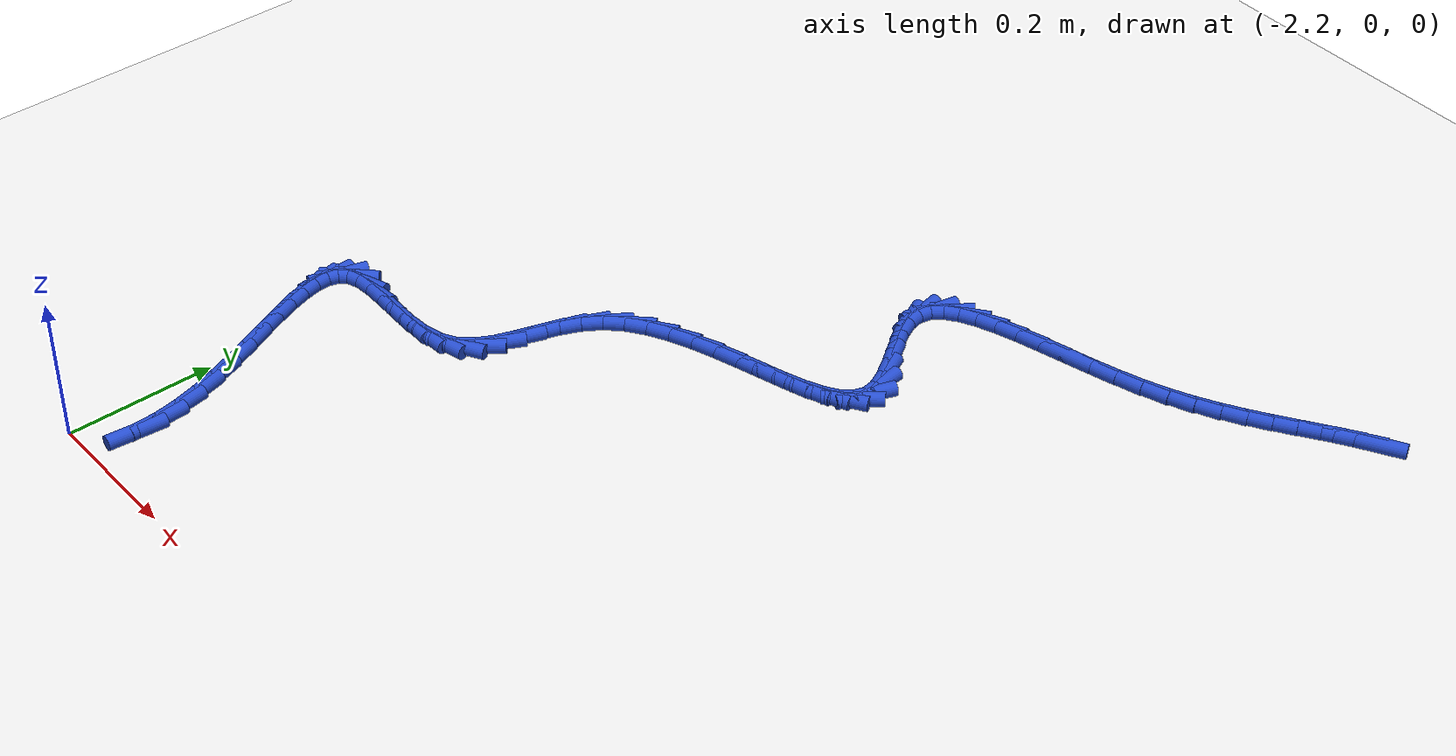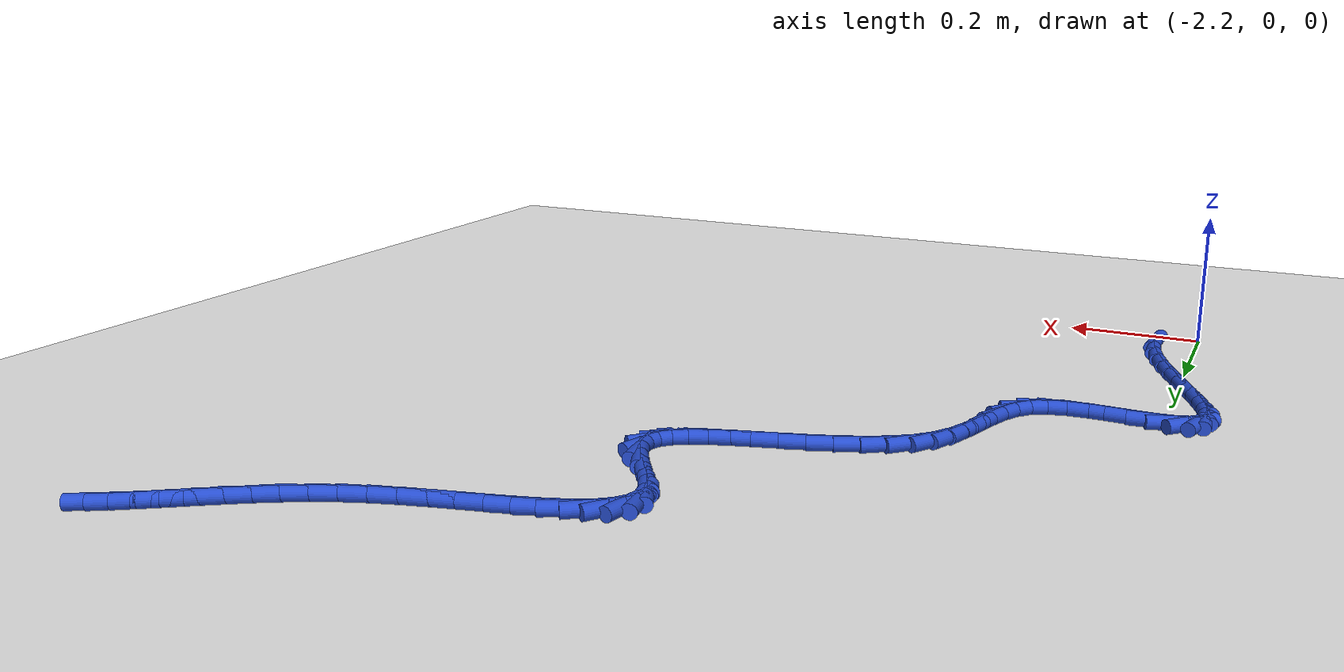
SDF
<sdf version="1.6">
 <world name="default">
  <model name="ground_plane">
   <static>1</static>
   <link name="link">
    <collision name="collision">
     <geometry><plane><normal>0 0 1</normal><size>100 100</size></plane></geometry>
     <surface><friction><ode><mu>100</mu><mu2>50</mu2></ode></friction></surface>
    </collision>
    <visual name="visual">
     <cast_shadows>0</cast_shadows>
     <geometry><plane><normal>0 0 1</normal><size>100 100</size></plane></geometry>
     <material>
      <script><uri>file://media/materials/scripts/gazebo.material</uri><name>Gazebo/WhiteGlow</name></script>
     </material>
    </visual>
   </link>
  </model>
  <model name="line">
   <link name="link_73">
    <pose>-1.1656450631402069 1.2110482546371346 0.01 0 1.57 0.5080261648451341</pose>
    <collision name="collision">
     <geometry><cylinder><radius>0.01</radius><length>0.08</length></cylinder></geometry>
    </collision>
    <visual name="visual">
     <material>
      <script><name>Gazebo/Blue</name><uri>file://media/materials/scripts/gazebo.material</uri></script>
     </material>
     <geometry><cylinder><radius>0.01</radius><length>0.08</length></cylinder></geometry>
    </visual>
   </link>
   <link name="link_74">
    <pose>-1.18724390941848 1.1990226615977815 0.01 0 1.57 0.5500102541060132</pose>
    <collision name="collision">
     <geometry><cylinder><radius>0.01</radius><length>0.08</length></cylinder></geometry>
    </collision>
    <visual name="visual">
     <material>
      <script><name>Gazebo/Blue</name><uri>file://media/materials/scripts/gazebo.material</uri></script>
     </material>
     <geometry><cylinder><radius>0.01</radius><length>0.08</length></cylinder></geometry>
    </visual>
   </link>
   <link name="link_75">
    <pose>-1.2092230648331632 1.1855468167322198 0.01 0 1.57 0.573174121978348</pose>
    <collision name="collision">
     <geometry><cylinder><radius>0.01</radius><length>0.08</length></cylinder></geometry>
    </collision>
    <visual name="visual">
     <material>
      <script><name>Gazebo/Blue</name><uri>file://media/materials/scripts/gazebo.material</uri></script>
     </material>
     <geometry><cylinder><radius>0.01</radius><length>0.08</length></cylinder></geometry>
    </visual>
   </link>
   <link name="link_76">
    <pose>-1.231787068992631 1.1709827476450816 0.01 0 1.57 0.579696136962879</pose>
    <collision name="collision">
     <geometry><cylinder><radius>0.01</radius><length>0.08</length></cylinder></geometry>
    </collision>
    <visual name="visual">
     <material>
      <script><name>Gazebo/Blue</name><uri>file://media/materials/scripts/gazebo.material</uri></script>
     </material>
     <geometry><cylinder><radius>0.01</radius><length>0.08</length></cylinder></geometry>
    </visual>
   </link>
   <link name="link_77">
    <pose>-1.2551404615052564 1.1556924819409986 0.01 0 1.57 0.5714126258259451</pose>
    <collision name="collision">
     <geometry><cylinder><radius>0.01</radius><length>0.08</length></cylinder></geometry>
    </collision>
    <visual name="visual">
     <material>
      <script><name>Gazebo/Blue</name><uri>file://media/materials/scripts/gazebo.material</uri></script>
     </material>
     <geometry><cylinder><radius>0.01</radius><length>0.08</length></cylinder></geometry>
    </visual>
   </link>
   <link name="link_78">
    <pose>-1.2794877819794128 1.1400380472246017 0.01 0 1.57 0.5498383918982339</pose>
    <collision name="collision">
     <geometry><cylinder><radius>0.01</radius><length>0.08</length></cylinder></geometry>
    </collision>
    <visual name="visual">
     <material>
      <script><name>Gazebo/Blue</name><uri>file://media/materials/scripts/gazebo.material</uri></script>
     </material>
     <geometry><cylinder><radius>0.01</radius><length>0.08</length></cylinder></geometry>
    </visual>
   </link>
   <link name="link_79">
    <pose>-1.305033570023474 1.1243814711005238 0.01 0 1.57 0.5162707420640201</pose>
    <collision name="collision">
     <geometry><cylinder><radius>0.01</radius><length>0.08</length></cylinder></geometry>
    </collision>
    <visual name="visual">
     <material>
      <script><name>Gazebo/Blue</name><uri>file://media/materials/scripts/gazebo.material</uri></script>
     </material>
     <geometry><cylinder><radius>0.01</radius><length>0.08</length></cylinder></geometry>
    </visual>
   </link>
   <link name="link_80">
    <pose>-1.3319823652458136 1.1090847811733962 0.01 0 1.57 0.4719223714415321</pose>
    <collision name="collision">
     <geometry><cylinder><radius>0.01</radius><length>0.08</length></cylinder></geometry>
    </collision>
    <visual name="visual">
     <material>
      <script><name>Gazebo/Blue</name><uri>file://media/materials/scripts/gazebo.material</uri></script>
     </material>
     <geometry><cylinder><radius>0.01</radius><length>0.08</length></cylinder></geometry>
    </visual>
   </link>
   <link name="link_81">
    <pose>-1.3605387072548052 1.0945100050478511 0.01 0 1.57 0.41805260726238536</pose>
    <collision name="collision">
     <geometry><cylinder><radius>0.01</radius><length>0.08</length></cylinder></geometry>
    </collision>
    <visual name="visual">
     <material>
      <script><name>Gazebo/Blue</name><uri>file://media/materials/scripts/gazebo.material</uri></script>
     </material>
     <geometry><cylinder><radius>0.01</radius><length>0.08</length></cylinder></geometry>
    </visual>
   </link>
   <link name="link_82">
    <pose>-1.3909071356588232 1.0810191703285197 0.01 0 1.57 0.3564737752553014</pose>
    <collision name="collision">
     <geometry><cylinder><radius>0.01</radius><length>0.08</length></cylinder></geometry>
    </collision>
    <visual name="visual">
     <material>
      <script><name>Gazebo/Blue</name><uri>file://media/materials/scripts/gazebo.material</uri></script>
     </material>
     <geometry><cylinder><radius>0.01</radius><length>0.08</length></cylinder></geometry>
    </visual>
   </link>
   <link name="link_83">
    <pose>-1.4232783986245852 1.0689646832171777 0.01 0 1.57 0.3010799710368386</pose>
    <collision name="collision">
     <geometry><cylinder><radius>0.01</radius><length>0.08</length></cylinder></geometry>
    </collision>
    <visual name="visual">
     <material>
      <script><name>Gazebo/Blue</name><uri>file://media/materials/scripts/gazebo.material</uri></script>
     </material>
     <geometry><cylinder><radius>0.01</radius><length>0.08</length></cylinder></geometry>
    </visual>
   </link>
   <link name="link_84">
    <pose>-1.457379683861187 1.0583755535642374 0.01 0 1.57 0.26475034938743125</pose>
    <collision name="collision">
     <geometry><cylinder><radius>0.01</radius><length>0.08</length></cylinder></geometry>
    </collision>
    <visual name="visual">
     <material>
      <script><name>Gazebo/Blue</name><uri>file://media/materials/scripts/gazebo.material</uri></script>
     </material>
     <geometry><cylinder><radius>0.01</radius><length>0.08</length></cylinder></geometry>
    </visual>
   </link>
   <link name="link_85">
    <pose>-1.4923749146577403 1.0488878378193645 0.01 0 1.57 0.24549358106713562</pose>
    <collision name="collision">
     <geometry><cylinder><radius>0.01</radius><length>0.08</length></cylinder></geometry>
    </collision>
    <visual name="visual">
     <material>
      <script><name>Gazebo/Blue</name><uri>file://media/materials/scripts/gazebo.material</uri></script>
     </material>
     <geometry><cylinder><radius>0.01</radius><length>0.08</length></cylinder></geometry>
    </visual>
   </link>
   <link name="link_86">
    <pose>-1.5273940445326066 1.040113893905447 0.01 0 1.57 0.2423486119743884</pose>
    <collision name="collision">
     <geometry><cylinder><radius>0.01</radius><length>0.08</length></cylinder></geometry>
    </collision>
    <visual name="visual">
     <material>
      <script><name>Gazebo/Blue</name><uri>file://media/materials/scripts/gazebo.material</uri></script>
     </material>
     <geometry><cylinder><radius>0.01</radius><length>0.08</length></cylinder></geometry>
    </visual>
   </link>
   <link name="link_87">
    <pose>-1.5615670270041484 1.031666079745375 0.01 0 1.57 0.25640333268643395</pose>
    <collision name="collision">
     <geometry><cylinder><radius>0.01</radius><length>0.08</length></cylinder></geometry>
    </collision>
    <visual name="visual">
     <material>
      <script><name>Gazebo/Blue</name><uri>file://media/materials/scripts/gazebo.material</uri></script>
     </material>
     <geometry><cylinder><radius>0.01</radius><length>0.08</length></cylinder></geometry>
    </visual>
   </link>
   <link name="link_88">
    <pose>-1.5940238155907258 1.0231567532620376 0.01 0 1.57 0.291374370046075</pose>
    <collision name="collision">
     <geometry><cylinder><radius>0.01</radius><length>0.08</length></cylinder></geometry>
    </collision>
    <visual name="visual">
     <material>
      <script><name>Gazebo/Blue</name><uri>file://media/materials/scripts/gazebo.material</uri></script>
     </material>
     <geometry><cylinder><radius>0.01</radius><length>0.08</length></cylinder></geometry>
    </visual>
   </link>
   <link name="link_89">
    <pose>-1.6238943638107015 1.0141982723783243 0.01 0 1.57 0.35511233384037283</pose>
    <collision name="collision">
     <geometry><cylinder><radius>0.01</radius><length>0.08</length></cylinder></geometry>
    </collision>
    <visual name="visual">
     <material>
      <script><name>Gazebo/Blue</name><uri>file://media/materials/scripts/gazebo.material</uri></script>
     </material>
     <geometry><cylinder><radius>0.01</radius><length>0.08</length></cylinder></geometry>
    </visual>
   </link>
   <link name="link_90">
    <pose>-1.6503086251824357 1.0044029950171236 0.01 0 1.57 0.4627689842121854</pose>
    <collision name="collision">
     <geometry><cylinder><radius>0.01</radius><length>0.08</length></cylinder></geometry>
    </collision>
    <visual name="visual">
     <material>
      <script><name>Gazebo/Blue</name><uri>file://media/materials/scripts/gazebo.material</uri></script>
     </material>
     <geometry><cylinder><radius>0.01</radius><length>0.08</length></cylinder></geometry>
    </visual>
   </link>
   <link name="link_91">
    <pose>-1.6723965532242921 0.9933832791013255 0.01 0 1.57 0.6421028896379123</pose>
    <collision name="collision">
     <geometry><cylinder><radius>0.01</radius><length>0.08</length></cylinder></geometry>
    </collision>
    <visual name="visual">
     <material>
      <script><name>Gazebo/Blue</name><uri>file://media/materials/scripts/gazebo.material</uri></script>
     </material>
     <geometry><cylinder><radius>0.01</radius><length>0.08</length></cylinder></geometry>
    </visual>
   </link>
   <link name="link_92">
    <pose>-1.689288101454631 0.9807514825538192 0.01 0 1.57 0.9338232637430942</pose>
    <collision name="collision">
     <geometry><cylinder><radius>0.01</radius><length>0.08</length></cylinder></geometry>
    </collision>
    <visual name="visual">
     <material>
      <script><name>Gazebo/Blue</name><uri>file://media/materials/scripts/gazebo.material</uri></script>
     </material>
     <geometry><cylinder><radius>0.01</radius><length>0.08</length></cylinder></geometry>
    </visual>
   </link>
   <link name="link_93">
    <pose>-1.7001132233918141 0.9661199632974937 0.01 0 1.57 1.3461623025383136</pose>
    <collision name="collision">
     <geometry><cylinder><radius>0.01</radius><length>0.08</length></cylinder></geometry>
    </collision>
    <visual name="visual">
     <material>
      <script><name>Gazebo/Blue</name><uri>file://media/materials/scripts/gazebo.material</uri></script>
     </material>
     <geometry><cylinder><radius>0.01</radius><length>0.08</length></cylinder></geometry>
    </visual>
   </link>
   <link name="link_94">
    <pose>-1.7040018725542028 0.9491010792552385 0.01 0 1.57 -1.3758552419342212</pose>
    <collision name="collision">
     <geometry><cylinder><radius>0.01</radius><length>0.08</length></cylinder></geometry>
    </collision>
    <visual name="visual">
     <material>
      <script><name>Gazebo/Blue</name><uri>file://media/materials/scripts/gazebo.material</uri></script>
     </material>
     <geometry><cylinder><radius>0.01</radius><length>0.08</length></cylinder></geometry>
    </visual>
   </link>
   <link name="link_95">
    <pose>-1.7000943898345662 0.9293112055816145 0.01 0 1.57 -1.1048046014543444</pose>
    <collision name="collision">
     <geometry><cylinder><radius>0.01</radius><length>0.08</length></cylinder></geometry>
    </collision>
    <visual name="visual">
     <material>
      <script><name>Gazebo/Blue</name><uri>file://media/materials/scripts/gazebo.material</uri></script>
     </material>
     <geometry><cylinder><radius>0.01</radius><length>0.08</length></cylinder></geometry>
    </visual>
   </link>
   <link name="link_96">
    <pose>-1.6888020370887837 0.90685823566723 0.01 0 1.57 -0.9898417401137195</pose>
    <collision name="collision">
     <geometry><cylinder><radius>0.01</radius><length>0.08</length></cylinder></geometry>
    </collision>
    <visual name="visual">
     <material>
      <script><name>Gazebo/Blue</name><uri>file://media/materials/scripts/gazebo.material</uri></script>
     </material>
     <geometry><cylinder><radius>0.01</radius><length>0.08</length></cylinder></geometry>
    </visual>
   </link>
   <link name="link_97">
    <pose>-1.6730119861461905 0.8828076007339862 0.01 0 1.57 -0.9604999957301049</pose>
    <collision name="collision">
     <geometry><cylinder><radius>0.01</radius><length>0.08</length></cylinder></geometry>
    </collision>
    <visual name="visual">
     <material>
      <script><name>Gazebo/Blue</name><uri>file://media/materials/scripts/gazebo.material</uri></script>
     </material>
     <geometry><cylinder><radius>0.01</radius><length>0.08</length></cylinder></geometry>
    </visual>
   </link>
   <link name="link_98">
    <pose>-1.6558969375744803 0.8583351578964183 0.01 0 1.57 -0.9988681809911665</pose>
    <collision name="collision">
     <geometry><cylinder><radius>0.01</radius><length>0.08</length></cylinder></geometry>
    </collision>
    <visual name="visual">
     <material>
      <script><name>Gazebo/Blue</name><uri>file://media/materials/scripts/gazebo.material</uri></script>
     </material>
     <geometry><cylinder><radius>0.01</radius><length>0.08</length></cylinder></geometry>
    </visual>
   </link>
   <link name="link_99">
    <pose>-1.6406295919413467 0.8346167642690615 0.01 0 1.57 -1.1311966422184314</pose>
    <collision name="collision">
     <geometry><cylinder><radius>0.01</radius><length>0.08</length></cylinder></geometry>
    </collision>
    <visual name="visual">
     <material>
      <script><name>Gazebo/Blue</name><uri>file://media/materials/scripts/gazebo.material</uri></script>
     </material>
     <geometry><cylinder><radius>0.01</radius><length>0.08</length></cylinder></geometry>
    </visual>
   </link>
   <link name="link_100">
    <pose>-1.6303826498144827 0.8128282769664501 0.01 0 1.57 -1.4446669297312884</pose>
    <collision name="collision">
     <geometry><cylinder><radius>0.01</radius><length>0.08</length></cylinder></geometry>
    </collision>
    <visual name="visual">
     <material>
      <script><name>Gazebo/Blue</name><uri>file://media/materials/scripts/gazebo.material</uri></script>
     </material>
     <geometry><cylinder><radius>0.01</radius><length>0.08</length></cylinder></geometry>
    </visual>
   </link>
   <link name="link_101">
    <pose>-1.6279967402777866 0.7940123310163362 0.01 0 1.57 1.2265594448515276</pose>
    <collision name="collision">
     <geometry><cylinder><radius>0.01</radius><length>0.08</length></cylinder></geometry>
    </collision>
    <visual name="visual">
     <material>
      <script><name>Gazebo/Blue</name><uri>file://media/materials/scripts/gazebo.material</uri></script>
     </material>
     <geometry><cylinder><radius>0.01</radius><length>0.08</length></cylinder></geometry>
    </visual>
   </link>
   <link name="link_102">
    <pose>-1.633681407522097 0.7781560097443107 0.01 0 1.57 0.8121636027915851</pose>
    <collision name="collision">
     <geometry><cylinder><radius>0.01</radius><length>0.08</length></cylinder></geometry>
    </collision>
    <visual name="visual">
     <material>
      <script><name>Gazebo/Blue</name><uri>file://media/materials/scripts/gazebo.material</uri></script>
     </material>
     <geometry><cylinder><radius>0.01</radius><length>0.08</length></cylinder></geometry>
    </visual>
   </link>
   <link name="link_103">
    <pose>-1.646393986123758 0.7647440288049235 0.01 0 1.57 0.5510473344008664</pose>
    <collision name="collision">
     <geometry><cylinder><radius>0.01</radius><length>0.08</length></cylinder></geometry>
    </collision>
    <visual name="visual">
     <material>
      <script><name>Gazebo/Blue</name><uri>file://media/materials/scripts/gazebo.material</uri></script>
     </material>
     <geometry><cylinder><radius>0.01</radius><length>0.08</length></cylinder></geometry>
    </visual>
   </link>
   <link name="link_104">
    <pose>-1.6650841608977314 0.7532580348834667 0.01 0 1.57 0.4033380444575405</pose>
    <collision name="collision">
     <geometry><cylinder><radius>0.01</radius><length>0.08</length></cylinder></geometry>
    </collision>
    <visual name="visual">
     <material>
      <script><name>Gazebo/Blue</name><uri>file://media/materials/scripts/gazebo.material</uri></script>
     </material>
     <geometry><cylinder><radius>0.01</radius><length>0.08</length></cylinder></geometry>
    </visual>
   </link>
   <link name="link_105">
    <pose>-1.6887016166589788 0.7431796746652339 0.01 0 1.57 0.3225448823996012</pose>
    <collision name="collision">
     <geometry><cylinder><radius>0.01</radius><length>0.08</length></cylinder></geometry>
    </collision>
    <visual name="visual">
     <material>
      <script><name>Gazebo/Blue</name><uri>file://media/materials/scripts/gazebo.material</uri></script>
     </material>
     <geometry><cylinder><radius>0.01</radius><length>0.08</length></cylinder></geometry>
    </visual>
   </link>
   <link name="link_106">
    <pose>-1.716196038222463 0.7339905948355178 0.01 0 1.57 0.2830190730060466</pose>
    <collision name="collision">
     <geometry><cylinder><radius>0.01</radius><length>0.08</length></cylinder></geometry>
    </collision>
    <visual name="visual">
     <material>
      <script><name>Gazebo/Blue</name><uri>file://media/materials/scripts/gazebo.material</uri></script>
     </material>
     <geometry><cylinder><radius>0.01</radius><length>0.08</length></cylinder></geometry>
    </visual>
   </link>
   <link name="link_107">
    <pose>-1.746517110403146 0.7251724420796117 0.01 0 1.57 0.272381816924485</pose>
    <collision name="collision">
     <geometry><cylinder><radius>0.01</radius><length>0.08</length></cylinder></geometry>
    </collision>
    <visual name="visual">
     <material>
      <script><name>Gazebo/Blue</name><uri>file://media/materials/scripts/gazebo.material</uri></script>
     </material>
     <geometry><cylinder><radius>0.01</radius><length>0.08</length></cylinder></geometry>
    </visual>
   </link>
   <link name="link_108">
    <pose>-1.7786145180159898 0.7162068630828079 0.01 0 1.57 0.285417868100931</pose>
    <collision name="collision">
     <geometry><cylinder><radius>0.01</radius><length>0.08</length></cylinder></geometry>
    </collision>
    <visual name="visual">
     <material>
      <script><name>Gazebo/Blue</name><uri>file://media/materials/scripts/gazebo.material</uri></script>
     </material>
     <geometry><cylinder><radius>0.01</radius><length>0.08</length></cylinder></geometry>
    </visual>
   </link>
   <link name="link_109">
    <pose>-1.8114379458759562 0.7065755045303993 0.01 0 1.57 0.3212643828093811</pose>
    <collision name="collision">
     <geometry><cylinder><radius>0.01</radius><length>0.08</length></cylinder></geometry>
    </collision>
    <visual name="visual">
     <material>
      <script><name>Gazebo/Blue</name><uri>file://media/materials/scripts/gazebo.material</uri></script>
     </material>
     <geometry><cylinder><radius>0.01</radius><length>0.08</length></cylinder></geometry>
    </visual>
   </link>
   <link name="link_110">
    <pose>-1.8439370787980076 0.6957600131076798 0.01 0 1.57 0.38239304120794576</pose>
    <collision name="collision">
     <geometry><cylinder><radius>0.01</radius><length>0.08</length></cylinder></geometry>
    </collision>
    <visual name="visual">
     <material>
      <script><name>Gazebo/Blue</name><uri>file://media/materials/scripts/gazebo.material</uri></script>
     </material>
     <geometry><cylinder><radius>0.01</radius><length>0.08</length></cylinder></geometry>
    </visual>
   </link>
   <link name="link_111">
    <pose>-1.8750616015971047 0.6832420354999411 0.01 0 1.57 0.47443258262426924</pose>
    <collision name="collision">
     <geometry><cylinder><radius>0.01</radius><length>0.08</length></cylinder></geometry>
    </collision>
    <visual name="visual">
     <material>
      <script><name>Gazebo/Blue</name><uri>file://media/materials/scripts/gazebo.material</uri></script>
     </material>
     <geometry><cylinder><radius>0.01</radius><length>0.08</length></cylinder></geometry>
    </visual>
   </link>
   <link name="link_112">
    <pose>-1.9037611990882117 0.6685032183924772 0.01 0 1.57 0.6059463710810408</pose>
    <collision name="collision">
     <geometry><cylinder><radius>0.01</radius><length>0.08</length></cylinder></geometry>
    </collision>
    <visual name="visual">
     <material>
      <script><name>Gazebo/Blue</name><uri>file://media/materials/scripts/gazebo.material</uri></script>
     </material>
     <geometry><cylinder><radius>0.01</radius><length>0.08</length></cylinder></geometry>
    </visual>
   </link>
   <link name="link_113">
    <pose>-1.9289855560862894 0.65102520847058 0.01 0 1.57 0.7862852224401734</pose>
    <collision name="collision">
     <geometry><cylinder><radius>0.01</radius><length>0.08</length></cylinder></geometry>
    </collision>
    <visual name="visual">
     <material>
      <script><name>Gazebo/Blue</name><uri>file://media/materials/scripts/gazebo.material</uri></script>
     </material>
     <geometry><cylinder><radius>0.01</radius><length>0.08</length></cylinder></geometry>
    </visual>
   </link>
   <link name="link_114">
    <pose>-1.9496843574063 0.6302896524195434 0.01 0 1.57 0.9998668293003632</pose>
    <collision name="collision">
     <geometry><cylinder><radius>0.01</radius><length>0.08</length></cylinder></geometry>
    </collision>
    <visual name="visual">
     <material>
      <script><name>Gazebo/Blue</name><uri>file://media/materials/scripts/gazebo.material</uri></script>
     </material>
     <geometry><cylinder><radius>0.01</radius><length>0.08</length></cylinder></geometry>
    </visual>
   </link>
   <link name="link_115">
    <pose>-1.9652304666838103 0.6060851120764296 0.01 0 1.57 1.161801380833984</pose>
    <collision name="collision">
     <geometry><cylinder><radius>0.01</radius><length>0.08</length></cylinder></geometry>
    </collision>
    <visual name="visual">
     <material>
      <script><name>Gazebo/Blue</name><uri>file://media/materials/scripts/gazebo.material</uri></script>
     </material>
     <geometry><cylinder><radius>0.01</radius><length>0.08</length></cylinder></geometry>
    </visual>
   </link>
   <link name="link_116">
    <pose>-1.976761939418831 0.5794803743335242 0.01 0 1.57 1.2518433390242099</pose>
    <collision name="collision">
     <geometry><cylinder><radius>0.01</radius><length>0.08</length></cylinder></geometry>
    </collision>
    <visual name="visual">
     <material>
      <script><name>Gazebo/Blue</name><uri>file://media/materials/scripts/gazebo.material</uri></script>
     </material>
     <geometry><cylinder><radius>0.01</radius><length>0.08</length></cylinder></geometry>
    </visual>
   </link>
   <link name="link_117">
    <pose>-1.9858770173375357 0.5518779812678445 0.01 0 1.57 1.2747019688265444</pose>
    <collision name="collision">
     <geometry><cylinder><radius>0.01</radius><length>0.08</length></cylinder></geometry>
    </collision>
    <visual name="visual">
     <material>
      <script><name>Gazebo/Blue</name><uri>file://media/materials/scripts/gazebo.material</uri></script>
     </material>
     <geometry><cylinder><radius>0.01</radius><length>0.08</length></cylinder></geometry>
    </visual>
   </link>
   <link name="link_118">
    <pose>-1.9941739433705257 0.5246804758299323 0.01 0 1.57 1.2274533991687453</pose>
    <collision name="collision">
     <geometry><cylinder><radius>0.01</radius><length>0.08</length></cylinder></geometry>
    </collision>
    <visual name="visual">
     <material>
      <script><name>Gazebo/Blue</name><uri>file://media/materials/scripts/gazebo.material</uri></script>
     </material>
     <geometry><cylinder><radius>0.01</radius><length>0.08</length></cylinder></geometry>
    </visual>
   </link>
   <link name="link_119">
    <pose>-2.003250960448402 0.4992904009703287 0.01 0 1.57 1.0940599100074475</pose>
    <collision name="collision">
     <geometry><cylinder><radius>0.01</radius><length>0.08</length></cylinder></geometry>
    </collision>
    <visual name="visual">
     <material>
      <script><name>Gazebo/Blue</name><uri>file://media/materials/scripts/gazebo.material</uri></script>
     </material>
     <geometry><cylinder><radius>0.01</radius><length>0.08</length></cylinder></geometry>
    </visual>
   </link>
   <link name="link_120">
    <pose>-2.0147063115017656 0.47711029963957463 0.01 0 1.57 0.8500258660766528</pose>
    <collision name="collision">
     <geometry><cylinder><radius>0.01</radius><length>0.08</length></cylinder></geometry>
    </collision>
    <visual name="visual">
     <material>
      <script><name>Gazebo/Blue</name><uri>file://media/materials/scripts/gazebo.material</uri></script>
     </material>
     <geometry><cylinder><radius>0.01</radius><length>0.08</length></cylinder></geometry>
    </visual>
   </link>
   <link name="link_121">
    <pose>-2.030138239461217 0.45954271478821146 0.01 0 1.57 0.5093210248882575</pose>
    <collision name="collision">
     <geometry><cylinder><radius>0.01</radius><length>0.08</length></cylinder></geometry>
    </collision>
    <visual name="visual">
     <material>
      <script><name>Gazebo/Blue</name><uri>file://media/materials/scripts/gazebo.material</uri></script>
     </material>
     <geometry><cylinder><radius>0.01</radius><length>0.08</length></cylinder></geometry>
    </visual>
   </link>
   <link name="link_122">
    <pose>-2.0510191077796853 0.44788142554538096 0.01 0 1.57 0.2302766626746544</pose>
    <collision name="collision">
     <geometry><cylinder><radius>0.01</radius><length>0.08</length></cylinder></geometry>
    </collision>
    <visual name="visual">
     <material>
      <script><name>Gazebo/Blue</name><uri>file://media/materials/scripts/gazebo.material</uri></script>
     </material>
     <geometry><cylinder><radius>0.01</radius><length>0.08</length></cylinder></geometry>
    </visual>
   </link>
   <link name="link_123">
    <pose>-2.0769490394847403 0.44180253652325946 0.01 0 1.57 0.07059107056242711</pose>
    <collision name="collision">
     <geometry><cylinder><radius>0.01</radius><length>0.08</length></cylinder></geometry>
    </collision>
    <visual name="visual">
     <material>
      <script><name>Gazebo/Blue</name><uri>file://media/materials/scripts/gazebo.material</uri></script>
     </material>
     <geometry><cylinder><radius>0.01</radius><length>0.08</length></cylinder></geometry>
    </visual>
   </link>
   <link name="link_124">
    <pose>-2.106092655494054 0.43974183343545403 0.01 0 1.57 -0.011862495836898032</pose>
    <collision name="collision">
     <geometry><cylinder><radius>0.01</radius><length>0.08</length></cylinder></geometry>
    </collision>
    <visual name="visual">
     <material>
      <script><name>Gazebo/Blue</name><uri>file://media/materials/scripts/gazebo.material</uri></script>
     </material>
     <geometry><cylinder><radius>0.01</radius><length>0.08</length></cylinder></geometry>
    </visual>
   </link>
   <link name="link_125">
    <pose>-2.1365779813594727 0.4401034824503842 0.01 0 1.57 -0.03964421049458123</pose>
    <collision name="collision">
     <geometry><cylinder><radius>0.01</radius><length>0.08</length></cylinder></geometry>
    </collision>
    <visual name="visual">
     <material>
      <script><name>Gazebo/Blue</name><uri>file://media/materials/scripts/gazebo.material</uri></script>
     </material>
     <geometry><cylinder><radius>0.01</radius><length>0.08</length></cylinder></geometry>
    </visual>
   </link>
   <link name="link_126">
    <pose>-2.1665330426328455 0.4412916497364699 0.01 0 1.57 -0.015200601299563429</pose>
    <collision name="collision">
     <geometry><cylinder><radius>0.01</radius><length>0.08</length></cylinder></geometry>
    </collision>
    <visual name="visual">
     <material>
      <script><name>Gazebo/Blue</name><uri>file://media/materials/scripts/gazebo.material</uri></script>
     </material>
     <geometry><cylinder><radius>0.01</radius><length>0.08</length></cylinder></geometry>
    </visual>
   </link>
   <link name="link_127">
    <pose>-2.19408586486602 0.4417105014621308 0.01 0 1.57 0.08341484047076055</pose>
    <collision name="collision">
     <geometry><cylinder><radius>0.01</radius><length>0.08</length></cylinder></geometry>
    </collision>
    <visual name="visual">
     <material>
      <script><name>Gazebo/Blue</name><uri>file://media/materials/scripts/gazebo.material</uri></script>
     </material>
     <geometry><cylinder><radius>0.01</radius><length>0.08</length></cylinder></geometry>
    </visual>
   </link>
   <link name="link_128">
    <pose>-2.217364473610842 0.43976420379578646 0.01 0 1.57 0.33019547486086887</pose>
    <collision name="collision">
     <geometry><cylinder><radius>0.01</radius><length>0.08</length></cylinder></geometry>
    </collision>
    <visual name="visual">
     <material>
      <script><name>Gazebo/Blue</name><uri>file://media/materials/scripts/gazebo.material</uri></script>
     </material>
     <geometry><cylinder><radius>0.01</radius><length>0.08</length></cylinder></geometry>
    </visual>
   </link>
   <link name="link_129">
    <pose>-2.23452919855168 0.4338811094843844 0.01 0 1.57 0.79298282287639</pose>
    <collision name="collision">
     <geometry><cylinder><radius>0.01</radius><length>0.08</length></cylinder></geometry>
    </collision>
    <visual name="visual">
     <material>
      <script><name>Gazebo/Blue</name><uri>file://media/materials/scripts/gazebo.material</uri></script>
     </material>
     <geometry><cylinder><radius>0.01</radius><length>0.08</length></cylinder></geometry>
    </visual>
   </link>
   <link name="link_130">
    <pose>-2.2448965878101745 0.42335524900239385 0.01 0 1.57 1.285805925802192</pose>
    <collision name="collision">
     <geometry><cylinder><radius>0.01</radius><length>0.08</length></cylinder></geometry>
    </collision>
    <visual name="visual">
     <material>
      <script><name>Gazebo/Blue</name><uri>file://media/materials/scripts/gazebo.material</uri></script>
     </material>
     <geometry><cylinder><radius>0.01</radius><length>0.08</length></cylinder></geometry>
    </visual>
   </link>
   <link name="link_131">
    <pose>-2.2492299489182677 0.40856386284602675 0.01 0 1.57 -1.5253696985261194</pose>
    <collision name="collision">
     <geometry><cylinder><radius>0.01</radius><length>0.08</length></cylinder></geometry>
    </collision>
    <visual name="visual">
     <material>
      <script><name>Gazebo/Blue</name><uri>file://media/materials/scripts/gazebo.material</uri></script>
     </material>
     <geometry><cylinder><radius>0.01</radius><length>0.08</length></cylinder></geometry>
    </visual>
   </link>
   <link name="link_132">
    <pose>-2.2483839186546595 0.38995257106006526 0.01 0 1.57 -1.3398044506004303</pose>
    <collision name="collision">
     <geometry><cylinder><radius>0.01</radius><length>0.08</length></cylinder></geometry>
    </collision>
    <visual name="visual">
     <material>
      <script><name>Gazebo/Blue</name><uri>file://media/materials/scripts/gazebo.material</uri></script>
     </material>
     <geometry><cylinder><radius>0.01</radius><length>0.08</length></cylinder></geometry>
    </visual>
   </link>
   <link name="link_133">
    <pose>-2.2432131337980463 0.36796699368929014 0.01 0 1.57 -1.2369520806347252</pose>
    <collision name="collision">
     <geometry><cylinder><radius>0.01</radius><length>0.08</length></cylinder></geometry>
    </collision>
    <visual name="visual">
     <material>
      <script><name>Gazebo/Blue</name><uri>file://media/materials/scripts/gazebo.material</uri></script>
     </material>
     <geometry><cylinder><radius>0.01</radius><length>0.08</length></cylinder></geometry>
    </visual>
   </link>
   <link name="link_134">
    <pose>-2.234572231127127 0.3430527507784827 0.01 0 1.57 -1.1809651472815286</pose>
    <collision name="collision">
     <geometry><cylinder><radius>0.01</radius><length>0.08</length></cylinder></geometry>
    </collision>
    <visual name="visual">
     <material>
      <script><name>Gazebo/Blue</name><uri>file://media/materials/scripts/gazebo.material</uri></script>
     </material>
     <geometry><cylinder><radius>0.01</radius><length>0.08</length></cylinder></geometry>
    </visual>
   </link>
   <link name="link_135">
    <pose>-2.223315847420602 0.31565546237242376 0.01 0 1.57 -1.1544137557918173</pose>
    <collision name="collision">
     <geometry><cylinder><radius>0.01</radius><length>0.08</length></cylinder></geometry>
    </collision>
    <visual name="visual">
     <material>
      <script><name>Gazebo/Blue</name><uri>file://media/materials/scripts/gazebo.material</uri></script>
     </material>
     <geometry><cylinder><radius>0.01</radius><length>0.08</length></cylinder></geometry>
    </visual>
   </link>
   <link name="link_136">
    <pose>-2.2102986194571668 0.28622074851589546 0.01 0 1.57 -1.148974743935465</pose>
    <collision name="collision">
     <geometry><cylinder><radius>0.01</radius><length>0.08</length></cylinder></geometry>
    </collision>
    <visual name="visual">
     <material>
      <script><name>Gazebo/Blue</name><uri>file://media/materials/scripts/gazebo.material</uri></script>
     </material>
     <geometry><cylinder><radius>0.01</radius><length>0.08</length></cylinder></geometry>
    </visual>
   </link>
   <link name="link_137">
    <pose>-2.1963751840155212 0.2551942292536786 0.01 0 1.57 -1.161012168396048</pose>
    <collision name="collision">
     <geometry><cylinder><radius>0.01</radius><length>0.08</length></cylinder></geometry>
    </collision>
    <visual name="visual">
     <material>
      <script><name>Gazebo/Blue</name><uri>file://media/materials/scripts/gazebo.material</uri></script>
     </material>
     <geometry><cylinder><radius>0.01</radius><length>0.08</length></cylinder></geometry>
    </visual>
   </link>
   <link name="link_138">
    <pose>-2.182400177874364 0.22302152463055433 0.01 0 1.57 -1.1896965865568006</pose>
    <collision name="collision">
     <geometry><cylinder><radius>0.01</radius><length>0.08</length></cylinder></geometry>
    </collision>
    <visual name="visual">
     <material>
      <script><name>Gazebo/Blue</name><uri>file://media/materials/scripts/gazebo.material</uri></script>
     </material>
     <geometry><cylinder><radius>0.01</radius><length>0.08</length></cylinder></geometry>
    </visual>
   </link>
   <link name="link_139">
    <pose>-2.169228237812393 0.19014825469130409 0.01 0 1.57 -1.2362916339716477</pose>
    <collision name="collision">
     <geometry><cylinder><radius>0.01</radius><length>0.08</length></cylinder></geometry>
    </collision>
    <visual name="visual">
     <material>
      <script><name>Gazebo/Blue</name><uri>file://media/materials/scripts/gazebo.material</uri></script>
     </material>
     <geometry><cylinder><radius>0.01</radius><length>0.08</length></cylinder></geometry>
    </visual>
   </link>
   <link name="link_140">
    <pose>-2.1577140006083058 0.1570200394807085 0.01 0 1.57 -1.3040093638455057</pose>
    <collision name="collision">
     <geometry><cylinder><radius>0.01</radius><length>0.08</length></cylinder></geometry>
    </collision>
    <visual name="visual">
     <material>
      <script><name>Gazebo/Blue</name><uri>file://media/materials/scripts/gazebo.material</uri></script>
     </material>
     <geometry><cylinder><radius>0.01</radius><length>0.08</length></cylinder></geometry>
    </visual>
   </link>
   <link name="link_141">
    <pose>-2.148712103040802 0.12408249904354987 0.01 0 1.57 -1.3980853026540936</pose>
    <collision name="collision">
     <geometry><cylinder><radius>0.01</radius><length>0.08</length></cylinder></geometry>
    </collision>
    <visual name="visual">
     <material>
      <script><name>Gazebo/Blue</name><uri>file://media/materials/scripts/gazebo.material</uri></script>
     </material>
     <geometry><cylinder><radius>0.01</radius><length>0.08</length></cylinder></geometry>
    </visual>
   </link>
   <link name="link_142">
    <pose>-2.143077181888579 0.09178125342460886 0.01 0 1.57 -1.522990112458517</pose>
    <collision name="collision">
     <geometry><cylinder><radius>0.01</radius><length>0.08</length></cylinder></geometry>
    </collision>
    <visual name="visual">
     <material>
      <script><name>Gazebo/Blue</name><uri>file://media/materials/scripts/gazebo.material</uri></script>
     </material>
     <geometry><cylinder><radius>0.01</radius><length>0.08</length></cylinder></geometry>
    </visual>
   </link>
   <link name="link_143">
    <pose>-2.1415823059666095 0.06053558890857581 0.01 0 1.57 1.487731353648803</pose>
    <collision name="collision">
     <geometry><cylinder><radius>0.01</radius><length>0.08</length></cylinder></geometry>
    </collision>
    <visual name="visual">
     <material>
      <script><name>Gazebo/Blue</name><uri>file://media/materials/scripts/gazebo.material</uri></script>
     </material>
     <geometry><cylinder><radius>0.01</radius><length>0.08</length></cylinder></geometry>
    </visual>
   </link>
  </model>
 </world>
</sdf>
